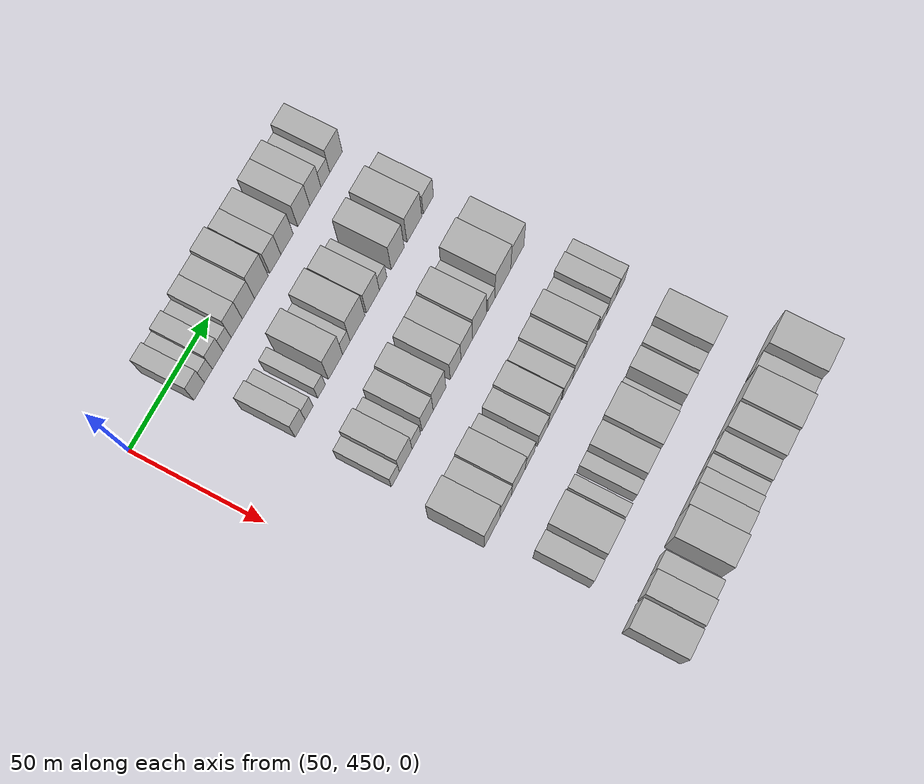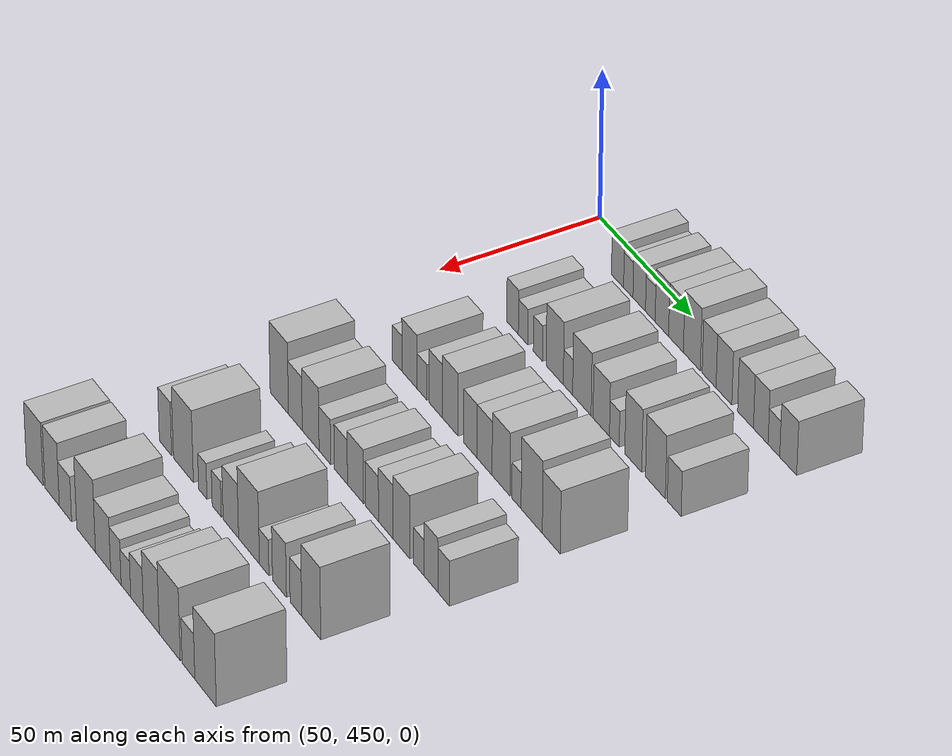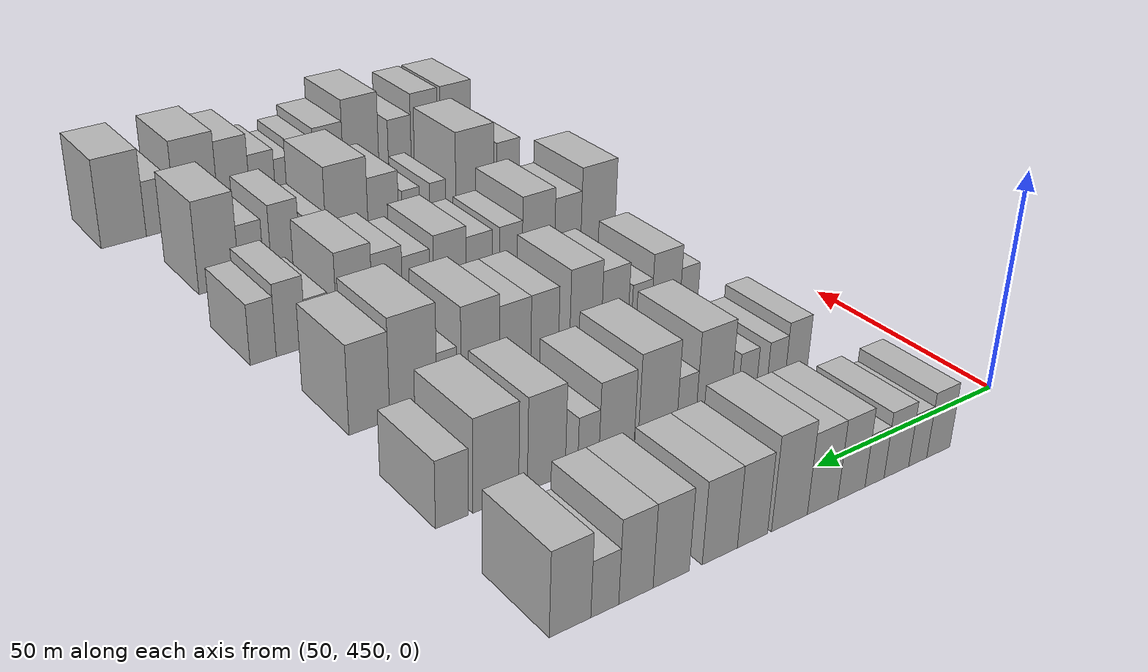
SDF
<sdf version="1.6">
 <world name="default">
  <model name="building_119">
   <static>1</static>
   <pose>50.0000 477.0918 0 0.000000 0.000000 0.000000</pose>
   <link name="link">
    <pose>0 0 7.50 0 0 0</pose>
    <collision name="collision"><geometry><box><size>20.0000 6.6706 15.0000</size></box></geometry></collision>
    <visual name="visual">
     <cast_shadows>0</cast_shadows>
     <geometry><box><size>20.0000 6.6706 15.0000</size></box></geometry>
     <material>
      <script>
       <uri>model://HANNAS_wall/materials/scripts</uri>
       <uri>model://HANNAS_wall/materials/textures</uri>
       <name>vrc/HANNAS_wall</name>
      </script>
     </material>
    </visual>
   </link>
  </model>
  <model name="building_120">
   <static>1</static>
   <pose>50.0000 482.9827 0 0.000000 0.000000 0.000000</pose>
   <link name="link">
    <pose>0 0 6.00 0 0 0</pose>
    <collision name="collision"><geometry><box><size>20.0000 5.1114 12.0000</size></box></geometry></collision>
    <visual name="visual">
     <cast_shadows>0</cast_shadows>
     <geometry><box><size>20.0000 5.1114 12.0000</size></box></geometry>
     <material>
      <script>
       <uri>model://HANNAS_wall/materials/scripts</uri>
       <uri>model://HANNAS_wall/materials/textures</uri>
       <name>vrc/HANNAS_wall</name>
      </script>
     </material>
    </visual>
   </link>
  </model>
  <model name="building_121">
   <static>1</static>
   <pose>50.0000 488.9538 0 0.000000 0.000000 0.000000</pose>
   <link name="link">
    <pose>0 0 7.50 0 0 0</pose>
    <collision name="collision"><geometry><box><size>20.0000 6.8308 15.0000</size></box></geometry></collision>
    <visual name="visual">
     <cast_shadows>0</cast_shadows>
     <geometry><box><size>20.0000 6.8308 15.0000</size></box></geometry>
     <material>
      <script>
       <uri>model://HANNAS_wall/materials/scripts</uri>
       <uri>model://HANNAS_wall/materials/textures</uri>
       <name>vrc/HANNAS_wall</name>
      </script>
     </material>
    </visual>
   </link>
  </model>
  <model name="building_122">
   <static>1</static>
   <pose>50.0000 494.9650 0 0.000000 0.000000 0.000000</pose>
   <link name="link">
    <pose>0 0 6.00 0 0 0</pose>
    <collision name="collision"><geometry><box><size>20.0000 5.1916 12.0000</size></box></geometry></collision>
    <visual name="visual">
     <cast_shadows>0</cast_shadows>
     <geometry><box><size>20.0000 5.1916 12.0000</size></box></geometry>
     <material>
      <script>
       <uri>model://HANNAS_wall/materials/scripts</uri>
       <uri>model://HANNAS_wall/materials/textures</uri>
       <name>vrc/HANNAS_wall</name>
      </script>
     </material>
    </visual>
   </link>
  </model>
  <model name="building_123">
   <static>1</static>
   <pose>50.0000 501.1820 0 0.000000 0.000000 0.000000</pose>
   <link name="link">
    <pose>0 0 9.00 0 0 0</pose>
    <collision name="collision"><geometry><box><size>20.0000 7.2425 18.0000</size></box></geometry></collision>
    <visual name="visual">
     <cast_shadows>0</cast_shadows>
     <geometry><box><size>20.0000 7.2425 18.0000</size></box></geometry>
     <material>
      <script>
       <uri>model://HANNAS_wall/materials/scripts</uri>
       <uri>model://HANNAS_wall/materials/textures</uri>
       <name>vrc/HANNAS_wall</name>
      </script>
     </material>
    </visual>
   </link>
  </model>
  <model name="building_124">
   <static>1</static>
   <pose>50.0000 508.7532 0 0.000000 0.000000 0.000000</pose>
   <link name="link">
    <pose>0 0 9.00 0 0 0</pose>
    <collision name="collision"><geometry><box><size>20.0000 7.9000 18.0000</size></box></geometry></collision>
    <visual name="visual">
     <cast_shadows>0</cast_shadows>
     <geometry><box><size>20.0000 7.9000 18.0000</size></box></geometry>
     <material>
      <script>
       <uri>model://HANNAS_wall/materials/scripts</uri>
       <uri>model://HANNAS_wall/materials/textures</uri>
       <name>vrc/HANNAS_wall</name>
      </script>
     </material>
    </visual>
   </link>
  </model>
  <model name="building_125">
   <static>1</static>
   <pose>50.0000 517.2124 0 0.000000 0.000000 0.000000</pose>
   <link name="link">
    <pose>0 0 10.50 0 0 0</pose>
    <collision name="collision"><geometry><box><size>20.0000 9.0184 21.0000</size></box></geometry></collision>
    <visual name="visual">
     <cast_shadows>0</cast_shadows>
     <geometry><box><size>20.0000 9.0184 21.0000</size></box></geometry>
     <material>
      <script>
       <uri>model://HANNAS_wall/materials/scripts</uri>
       <uri>model://HANNAS_wall/materials/textures</uri>
       <name>vrc/HANNAS_wall</name>
      </script>
     </material>
    </visual>
   </link>
  </model>
  <model name="building_126">
   <static>1</static>
   <pose>50.0000 526.3912 0 0.000000 0.000000 0.000000</pose>
   <link name="link">
    <pose>0 0 9.00 0 0 0</pose>
    <collision name="collision"><geometry><box><size>20.0000 7.3392 18.0000</size></box></geometry></collision>
    <visual name="visual">
     <cast_shadows>0</cast_shadows>
     <geometry><box><size>20.0000 7.3392 18.0000</size></box></geometry>
     <material>
      <script>
       <uri>model://HANNAS_wall/materials/scripts</uri>
       <uri>model://HANNAS_wall/materials/textures</uri>
       <name>vrc/HANNAS_wall</name>
      </script>
     </material>
    </visual>
   </link>
  </model>
  <model name="building_127">
   <static>1</static>
   <pose>50.0000 534.2144 0 0.000000 0.000000 0.000000</pose>
   <link name="link">
    <pose>0 0 9.00 0 0 0</pose>
    <collision name="collision"><geometry><box><size>20.0000 8.3072 18.0000</size></box></geometry></collision>
    <visual name="visual">
     <cast_shadows>0</cast_shadows>
     <geometry><box><size>20.0000 8.3072 18.0000</size></box></geometry>
     <material>
      <script>
       <uri>model://HANNAS_wall/materials/scripts</uri>
       <uri>model://HANNAS_wall/materials/textures</uri>
       <name>vrc/HANNAS_wall</name>
      </script>
     </material>
    </visual>
   </link>
  </model>
  <model name="building_128">
   <static>1</static>
   <pose>50.0000 545.4854 0 0.000000 0.000000 0.000000</pose>
   <link name="link">
    <pose>0 0 9.00 0 0 0</pose>
    <collision name="collision"><geometry><box><size>20.0000 8.2349 18.0000</size></box></geometry></collision>
    <visual name="visual">
     <cast_shadows>0</cast_shadows>
     <geometry><box><size>20.0000 8.2349 18.0000</size></box></geometry>
     <material>
      <script>
       <uri>model://HANNAS_wall/materials/scripts</uri>
       <uri>model://HANNAS_wall/materials/textures</uri>
       <name>vrc/HANNAS_wall</name>
      </script>
     </material>
    </visual>
   </link>
  </model>
  <model name="building_129">
   <static>1</static>
   <pose>50.0000 553.3881 0 0.000000 0.000000 0.000000</pose>
   <link name="link">
    <pose>0 0 9.00 0 0 0</pose>
    <collision name="collision"><geometry><box><size>20.0000 7.5705 18.0000</size></box></geometry></collision>
    <visual name="visual">
     <cast_shadows>0</cast_shadows>
     <geometry><box><size>20.0000 7.5705 18.0000</size></box></geometry>
     <material>
      <script>
       <uri>model://HANNAS_wall/materials/scripts</uri>
       <uri>model://HANNAS_wall/materials/textures</uri>
       <name>vrc/HANNAS_wall</name>
      </script>
     </material>
    </visual>
   </link>
  </model>
  <model name="building_130">
   <static>1</static>
   <pose>50.0000 560.1666 0 0.000000 0.000000 0.000000</pose>
   <link name="link">
    <pose>0 0 6.00 0 0 0</pose>
    <collision name="collision"><geometry><box><size>20.0000 5.9866 12.0000</size></box></geometry></collision>
    <visual name="visual">
     <cast_shadows>0</cast_shadows>
     <geometry><box><size>20.0000 5.9866 12.0000</size></box></geometry>
     <material>
      <script>
       <uri>model://HANNAS_wall/materials/scripts</uri>
       <uri>model://HANNAS_wall/materials/textures</uri>
       <name>vrc/HANNAS_wall</name>
      </script>
     </material>
    </visual>
   </link>
  </model>
  <model name="building_131">
   <static>1</static>
   <pose>50.0000 567.5049 0 0.000000 0.000000 0.000000</pose>
   <link name="link">
    <pose>0 0 9.00 0 0 0</pose>
    <collision name="collision"><geometry><box><size>20.0000 8.6899 18.0000</size></box></geometry></collision>
    <visual name="visual">
     <cast_shadows>0</cast_shadows>
     <geometry><box><size>20.0000 8.6899 18.0000</size></box></geometry>
     <material>
      <script>
       <uri>model://HANNAS_wall/materials/scripts</uri>
       <uri>model://HANNAS_wall/materials/textures</uri>
       <name>vrc/HANNAS_wall</name>
      </script>
     </material>
    </visual>
   </link>
  </model>
  <model name="building_246">
   <static>1</static>
   <pose>85.0000 481.6206 0 0.000000 0.000000 0.000000</pose>
   <link name="link">
    <pose>0 0 7.50 0 0 0</pose>
    <collision name="collision"><geometry><box><size>20.0000 6.4256 15.0000</size></box></geometry></collision>
    <visual name="visual">
     <cast_shadows>0</cast_shadows>
     <geometry><box><size>20.0000 6.4256 15.0000</size></box></geometry>
     <material>
      <script>
       <uri>model://HANNAS_wall/materials/scripts</uri>
       <uri>model://HANNAS_wall/materials/textures</uri>
       <name>vrc/HANNAS_wall</name>
      </script>
     </material>
    </visual>
   </link>
  </model>
  <model name="building_247">
   <static>1</static>
   <pose>85.0000 487.4382 0 0.000000 0.000000 0.000000</pose>
   <link name="link">
    <pose>0 0 6.00 0 0 0</pose>
    <collision name="collision"><geometry><box><size>20.0000 5.2096 12.0000</size></box></geometry></collision>
    <visual name="visual">
     <cast_shadows>0</cast_shadows>
     <geometry><box><size>20.0000 5.2096 12.0000</size></box></geometry>
     <material>
      <script>
       <uri>model://HANNAS_wall/materials/scripts</uri>
       <uri>model://HANNAS_wall/materials/textures</uri>
       <name>vrc/HANNAS_wall</name>
      </script>
     </material>
    </visual>
   </link>
  </model>
  <model name="building_248">
   <static>1</static>
   <pose>85.0000 495.5794 0 0.000000 0.000000 0.000000</pose>
   <link name="link">
    <pose>0 0 6.00 0 0 0</pose>
    <collision name="collision"><geometry><box><size>20.0000 5.0729 12.0000</size></box></geometry></collision>
    <visual name="visual">
     <cast_shadows>0</cast_shadows>
     <geometry><box><size>20.0000 5.0729 12.0000</size></box></geometry>
     <material>
      <script>
       <uri>model://HANNAS_wall/materials/scripts</uri>
       <uri>model://HANNAS_wall/materials/textures</uri>
       <name>vrc/HANNAS_wall</name>
      </script>
     </material>
    </visual>
   </link>
  </model>
  <model name="building_249">
   <static>1</static>
   <pose>85.0000 504.8098 0 0.000000 0.000000 0.000000</pose>
   <link name="link">
    <pose>0 0 10.50 0 0 0</pose>
    <collision name="collision"><geometry><box><size>20.0000 9.3879 21.0000</size></box></geometry></collision>
    <visual name="visual">
     <cast_shadows>0</cast_shadows>
     <geometry><box><size>20.0000 9.3879 21.0000</size></box></geometry>
     <material>
      <script>
       <uri>model://HANNAS_wall/materials/scripts</uri>
       <uri>model://HANNAS_wall/materials/textures</uri>
       <name>vrc/HANNAS_wall</name>
      </script>
     </material>
    </visual>
   </link>
  </model>
  <model name="building_250">
   <static>1</static>
   <pose>85.0000 512.0271 0 0.000000 0.000000 0.000000</pose>
   <link name="link">
    <pose>0 0 6.00 0 0 0</pose>
    <collision name="collision"><geometry><box><size>20.0000 5.0467 12.0000</size></box></geometry></collision>
    <visual name="visual">
     <cast_shadows>0</cast_shadows>
     <geometry><box><size>20.0000 5.0467 12.0000</size></box></geometry>
     <material>
      <script>
       <uri>model://HANNAS_wall/materials/scripts</uri>
       <uri>model://HANNAS_wall/materials/textures</uri>
       <name>vrc/HANNAS_wall</name>
      </script>
     </material>
    </visual>
   </link>
  </model>
  <model name="building_251">
   <static>1</static>
   <pose>85.0000 519.5351 0 0.000000 0.000000 0.000000</pose>
   <link name="link">
    <pose>0 0 10.50 0 0 0</pose>
    <collision name="collision"><geometry><box><size>20.0000 9.9693 21.0000</size></box></geometry></collision>
    <visual name="visual">
     <cast_shadows>0</cast_shadows>
     <geometry><box><size>20.0000 9.9693 21.0000</size></box></geometry>
     <material>
      <script>
       <uri>model://HANNAS_wall/materials/scripts</uri>
       <uri>model://HANNAS_wall/materials/textures</uri>
       <name>vrc/HANNAS_wall</name>
      </script>
     </material>
    </visual>
   </link>
  </model>
  <model name="building_252">
   <static>1</static>
   <pose>85.0000 529.9275 0 0.000000 0.000000 0.000000</pose>
   <link name="link">
    <pose>0 0 9.00 0 0 0</pose>
    <collision name="collision"><geometry><box><size>20.0000 8.8155 18.0000</size></box></geometry></collision>
    <visual name="visual">
     <cast_shadows>0</cast_shadows>
     <geometry><box><size>20.0000 8.8155 18.0000</size></box></geometry>
     <material>
      <script>
       <uri>model://HANNAS_wall/materials/scripts</uri>
       <uri>model://HANNAS_wall/materials/textures</uri>
       <name>vrc/HANNAS_wall</name>
      </script>
     </material>
    </visual>
   </link>
  </model>
  <model name="building_253">
   <static>1</static>
   <pose>85.0000 536.9122 0 0.000000 0.000000 0.000000</pose>
   <link name="link">
    <pose>0 0 6.00 0 0 0</pose>
    <collision name="collision"><geometry><box><size>20.0000 5.1539 12.0000</size></box></geometry></collision>
    <visual name="visual">
     <cast_shadows>0</cast_shadows>
     <geometry><box><size>20.0000 5.1539 12.0000</size></box></geometry>
     <material>
      <script>
       <uri>model://HANNAS_wall/materials/scripts</uri>
       <uri>model://HANNAS_wall/materials/textures</uri>
       <name>vrc/HANNAS_wall</name>
      </script>
     </material>
    </visual>
   </link>
  </model>
  <model name="building_254">
   <static>1</static>
   <pose>85.0000 546.9559 0 0.000000 0.000000 0.000000</pose>
   <link name="link">
    <pose>0 0 10.50 0 0 0</pose>
    <collision name="collision"><geometry><box><size>20.0000 8.9335 21.0000</size></box></geometry></collision>
    <visual name="visual">
     <cast_shadows>0</cast_shadows>
     <geometry><box><size>20.0000 8.9335 21.0000</size></box></geometry>
     <material>
      <script>
       <uri>model://HANNAS_wall/materials/scripts</uri>
       <uri>model://HANNAS_wall/materials/textures</uri>
       <name>vrc/HANNAS_wall</name>
      </script>
     </material>
    </visual>
   </link>
  </model>
  <model name="building_255">
   <static>1</static>
   <pose>85.0000 558.6163 0 0.000000 0.000000 0.000000</pose>
   <link name="link">
    <pose>0 0 10.50 0 0 0</pose>
    <collision name="collision"><geometry><box><size>20.0000 10.3873 21.0000</size></box></geometry></collision>
    <visual name="visual">
     <cast_shadows>0</cast_shadows>
     <geometry><box><size>20.0000 10.3873 21.0000</size></box></geometry>
     <material>
      <script>
       <uri>model://HANNAS_wall/materials/scripts</uri>
       <uri>model://HANNAS_wall/materials/textures</uri>
       <name>vrc/HANNAS_wall</name>
      </script>
     </material>
    </visual>
   </link>
  </model>
  <model name="building_256">
   <static>1</static>
   <pose>85.0000 568.4109 0 0.000000 0.000000 0.000000</pose>
   <link name="link">
    <pose>0 0 7.50 0 0 0</pose>
    <collision name="collision"><geometry><box><size>20.0000 7.2018 15.0000</size></box></geometry></collision>
    <visual name="visual">
     <cast_shadows>0</cast_shadows>
     <geometry><box><size>20.0000 7.2018 15.0000</size></box></geometry>
     <material>
      <script>
       <uri>model://HANNAS_wall/materials/scripts</uri>
       <uri>model://HANNAS_wall/materials/textures</uri>
       <name>vrc/HANNAS_wall</name>
      </script>
     </material>
    </visual>
   </link>
  </model>
  <model name="building_369">
   <static>1</static>
   <pose>120.0000 481.2871 0 0.000000 0.000000 0.000000</pose>
   <link name="link">
    <pose>0 0 6.00 0 0 0</pose>
    <collision name="collision"><geometry><box><size>20.0000 5.3602 12.0000</size></box></geometry></collision>
    <visual name="visual">
     <cast_shadows>0</cast_shadows>
     <geometry><box><size>20.0000 5.3602 12.0000</size></box></geometry>
     <material>
      <script>
       <uri>model://HANNAS_wall/materials/scripts</uri>
       <uri>model://HANNAS_wall/materials/textures</uri>
       <name>vrc/HANNAS_wall</name>
      </script>
     </material>
    </visual>
   </link>
  </model>
  <model name="building_370">
   <static>1</static>
   <pose>120.0000 488.1576 0 0.000000 0.000000 0.000000</pose>
   <link name="link">
    <pose>0 0 9.00 0 0 0</pose>
    <collision name="collision"><geometry><box><size>20.0000 8.3807 18.0000</size></box></geometry></collision>
    <visual name="visual">
     <cast_shadows>0</cast_shadows>
     <geometry><box><size>20.0000 8.3807 18.0000</size></box></geometry>
     <material>
      <script>
       <uri>model://HANNAS_wall/materials/scripts</uri>
       <uri>model://HANNAS_wall/materials/textures</uri>
       <name>vrc/HANNAS_wall</name>
      </script>
     </material>
    </visual>
   </link>
  </model>
  <model name="building_371">
   <static>1</static>
   <pose>120.0000 495.2003 0 0.000000 0.000000 0.000000</pose>
   <link name="link">
    <pose>0 0 6.00 0 0 0</pose>
    <collision name="collision"><geometry><box><size>20.0000 5.7048 12.0000</size></box></geometry></collision>
    <visual name="visual">
     <cast_shadows>0</cast_shadows>
     <geometry><box><size>20.0000 5.7048 12.0000</size></box></geometry>
     <material>
      <script>
       <uri>model://HANNAS_wall/materials/scripts</uri>
       <uri>model://HANNAS_wall/materials/textures</uri>
       <name>vrc/HANNAS_wall</name>
      </script>
     </material>
    </visual>
   </link>
  </model>
  <model name="building_372">
   <static>1</static>
   <pose>120.0000 502.8344 0 0.000000 0.000000 0.000000</pose>
   <link name="link">
    <pose>0 0 9.00 0 0 0</pose>
    <collision name="collision"><geometry><box><size>20.0000 7.5634 18.0000</size></box></geometry></collision>
    <visual name="visual">
     <cast_shadows>0</cast_shadows>
     <geometry><box><size>20.0000 7.5634 18.0000</size></box></geometry>
     <material>
      <script>
       <uri>model://HANNAS_wall/materials/scripts</uri>
       <uri>model://HANNAS_wall/materials/textures</uri>
       <name>vrc/HANNAS_wall</name>
      </script>
     </material>
    </visual>
   </link>
  </model>
  <model name="building_373">
   <static>1</static>
   <pose>120.0000 510.9601 0 0.000000 0.000000 0.000000</pose>
   <link name="link">
    <pose>0 0 10.50 0 0 0</pose>
    <collision name="collision"><geometry><box><size>20.0000 8.6878 21.0000</size></box></geometry></collision>
    <visual name="visual">
     <cast_shadows>0</cast_shadows>
     <geometry><box><size>20.0000 8.6878 21.0000</size></box></geometry>
     <material>
      <script>
       <uri>model://HANNAS_wall/materials/scripts</uri>
       <uri>model://HANNAS_wall/materials/textures</uri>
       <name>vrc/HANNAS_wall</name>
      </script>
     </material>
    </visual>
   </link>
  </model>
  <model name="building_374">
   <static>1</static>
   <pose>120.0000 521.9841 0 0.000000 0.000000 0.000000</pose>
   <link name="link">
    <pose>0 0 9.00 0 0 0</pose>
    <collision name="collision"><geometry><box><size>20.0000 7.3604 18.0000</size></box></geometry></collision>
    <visual name="visual">
     <cast_shadows>0</cast_shadows>
     <geometry><box><size>20.0000 7.3604 18.0000</size></box></geometry>
     <material>
      <script>
       <uri>model://HANNAS_wall/materials/scripts</uri>
       <uri>model://HANNAS_wall/materials/textures</uri>
       <name>vrc/HANNAS_wall</name>
      </script>
     </material>
    </visual>
   </link>
  </model>
  <model name="building_375">
   <static>1</static>
   <pose>120.0000 529.7466 0 0.000000 0.000000 0.000000</pose>
   <link name="link">
    <pose>0 0 9.00 0 0 0</pose>
    <collision name="collision"><geometry><box><size>20.0000 8.1645 18.0000</size></box></geometry></collision>
    <visual name="visual">
     <cast_shadows>0</cast_shadows>
     <geometry><box><size>20.0000 8.1645 18.0000</size></box></geometry>
     <material>
      <script>
       <uri>model://HANNAS_wall/materials/scripts</uri>
       <uri>model://HANNAS_wall/materials/textures</uri>
       <name>vrc/HANNAS_wall</name>
      </script>
     </material>
    </visual>
   </link>
  </model>
  <model name="building_376">
   <static>1</static>
   <pose>120.0000 538.6547 0 0.000000 0.000000 0.000000</pose>
   <link name="link">
    <pose>0 0 10.50 0 0 0</pose>
    <collision name="collision"><geometry><box><size>20.0000 9.6517 21.0000</size></box></geometry></collision>
    <visual name="visual">
     <cast_shadows>0</cast_shadows>
     <geometry><box><size>20.0000 9.6517 21.0000</size></box></geometry>
     <material>
      <script>
       <uri>model://HANNAS_wall/materials/scripts</uri>
       <uri>model://HANNAS_wall/materials/textures</uri>
       <name>vrc/HANNAS_wall</name>
      </script>
     </material>
    </visual>
   </link>
  </model>
  <model name="building_377">
   <static>1</static>
   <pose>120.0000 546.9746 0 0.000000 0.000000 0.000000</pose>
   <link name="link">
    <pose>0 0 6.00 0 0 0</pose>
    <collision name="collision"><geometry><box><size>20.0000 4.9881 12.0000</size></box></geometry></collision>
    <visual name="visual">
     <cast_shadows>0</cast_shadows>
     <geometry><box><size>20.0000 4.9881 12.0000</size></box></geometry>
     <material>
      <script>
       <uri>model://HANNAS_wall/materials/scripts</uri>
       <uri>model://HANNAS_wall/materials/textures</uri>
       <name>vrc/HANNAS_wall</name>
      </script>
     </material>
    </visual>
   </link>
  </model>
  <model name="building_378">
   <static>1</static>
   <pose>120.0000 555.1333 0 0.000000 0.000000 0.000000</pose>
   <link name="link">
    <pose>0 0 12.00 0 0 0</pose>
    <collision name="collision"><geometry><box><size>20.0000 11.3293 24.0000</size></box></geometry></collision>
    <visual name="visual">
     <cast_shadows>0</cast_shadows>
     <geometry><box><size>20.0000 11.3293 24.0000</size></box></geometry>
     <material>
      <script>
       <uri>model://HANNAS_wall/materials/scripts</uri>
       <uri>model://HANNAS_wall/materials/textures</uri>
       <name>vrc/HANNAS_wall</name>
      </script>
     </material>
    </visual>
   </link>
  </model>
  <model name="building_379">
   <static>1</static>
   <pose>120.0000 565.5545 0 0.000000 0.000000 0.000000</pose>
   <link name="link">
    <pose>0 0 10.50 0 0 0</pose>
    <collision name="collision"><geometry><box><size>20.0000 9.5131 21.0000</size></box></geometry></collision>
    <visual name="visual">
     <cast_shadows>0</cast_shadows>
     <geometry><box><size>20.0000 9.5131 21.0000</size></box></geometry>
     <material>
      <script>
       <uri>model://HANNAS_wall/materials/scripts</uri>
       <uri>model://HANNAS_wall/materials/textures</uri>
       <name>vrc/HANNAS_wall</name>
      </script>
     </material>
    </visual>
   </link>
  </model>
  <model name="building_493">
   <static>1</static>
   <pose>155.0000 480.4777 0 0.000000 0.000000 0.000000</pose>
   <link name="link">
    <pose>0 0 12.00 0 0 0</pose>
    <collision name="collision"><geometry><box><size>20.0000 10.5417 24.0000</size></box></geometry></collision>
    <visual name="visual">
     <cast_shadows>0</cast_shadows>
     <geometry><box><size>20.0000 10.5417 24.0000</size></box></geometry>
     <material>
      <script>
       <uri>model://HANNAS_wall/materials/scripts</uri>
       <uri>model://HANNAS_wall/materials/textures</uri>
       <name>vrc/HANNAS_wall</name>
      </script>
     </material>
    </visual>
   </link>
  </model>
  <model name="building_494">
   <static>1</static>
   <pose>155.0000 489.7058 0 0.000000 0.000000 0.000000</pose>
   <link name="link">
    <pose>0 0 9.00 0 0 0</pose>
    <collision name="collision"><geometry><box><size>20.0000 7.9146 18.0000</size></box></geometry></collision>
    <visual name="visual">
     <cast_shadows>0</cast_shadows>
     <geometry><box><size>20.0000 7.9146 18.0000</size></box></geometry>
     <material>
      <script>
       <uri>model://HANNAS_wall/materials/scripts</uri>
       <uri>model://HANNAS_wall/materials/textures</uri>
       <name>vrc/HANNAS_wall</name>
      </script>
     </material>
    </visual>
   </link>
  </model>
  <model name="building_495">
   <static>1</static>
   <pose>155.0000 498.4203 0 0.000000 0.000000 0.000000</pose>
   <link name="link">
    <pose>0 0 10.50 0 0 0</pose>
    <collision name="collision"><geometry><box><size>20.0000 9.5144 21.0000</size></box></geometry></collision>
    <visual name="visual">
     <cast_shadows>0</cast_shadows>
     <geometry><box><size>20.0000 9.5144 21.0000</size></box></geometry>
     <material>
      <script>
       <uri>model://HANNAS_wall/materials/scripts</uri>
       <uri>model://HANNAS_wall/materials/textures</uri>
       <name>vrc/HANNAS_wall</name>
      </script>
     </material>
    </visual>
   </link>
  </model>
  <model name="building_496">
   <static>1</static>
   <pose>155.0000 506.4760 0 0.000000 0.000000 0.000000</pose>
   <link name="link">
    <pose>0 0 7.50 0 0 0</pose>
    <collision name="collision"><geometry><box><size>20.0000 6.5970 15.0000</size></box></geometry></collision>
    <visual name="visual">
     <cast_shadows>0</cast_shadows>
     <geometry><box><size>20.0000 6.5970 15.0000</size></box></geometry>
     <material>
      <script>
       <uri>model://HANNAS_wall/materials/scripts</uri>
       <uri>model://HANNAS_wall/materials/textures</uri>
       <name>vrc/HANNAS_wall</name>
      </script>
     </material>
    </visual>
   </link>
  </model>
  <model name="building_497">
   <static>1</static>
   <pose>155.0000 515.4510 0 0.000000 0.000000 0.000000</pose>
   <link name="link">
    <pose>0 0 7.50 0 0 0</pose>
    <collision name="collision"><geometry><box><size>20.0000 7.3530 15.0000</size></box></geometry></collision>
    <visual name="visual">
     <cast_shadows>0</cast_shadows>
     <geometry><box><size>20.0000 7.3530 15.0000</size></box></geometry>
     <material>
      <script>
       <uri>model://HANNAS_wall/materials/scripts</uri>
       <uri>model://HANNAS_wall/materials/textures</uri>
       <name>vrc/HANNAS_wall</name>
      </script>
     </material>
    </visual>
   </link>
  </model>
  <model name="building_498">
   <static>1</static>
   <pose>155.0000 523.5998 0 0.000000 0.000000 0.000000</pose>
   <link name="link">
    <pose>0 0 9.00 0 0 0</pose>
    <collision name="collision"><geometry><box><size>20.0000 8.9444 18.0000</size></box></geometry></collision>
    <visual name="visual">
     <cast_shadows>0</cast_shadows>
     <geometry><box><size>20.0000 8.9444 18.0000</size></box></geometry>
     <material>
      <script>
       <uri>model://HANNAS_wall/materials/scripts</uri>
       <uri>model://HANNAS_wall/materials/textures</uri>
       <name>vrc/HANNAS_wall</name>
      </script>
     </material>
    </visual>
   </link>
  </model>
  <model name="building_499">
   <static>1</static>
   <pose>155.0000 532.7424 0 0.000000 0.000000 0.000000</pose>
   <link name="link">
    <pose>0 0 7.50 0 0 0</pose>
    <collision name="collision"><geometry><box><size>20.0000 7.3409 15.0000</size></box></geometry></collision>
    <visual name="visual">
     <cast_shadows>0</cast_shadows>
     <geometry><box><size>20.0000 7.3409 15.0000</size></box></geometry>
     <material>
      <script>
       <uri>model://HANNAS_wall/materials/scripts</uri>
       <uri>model://HANNAS_wall/materials/textures</uri>
       <name>vrc/HANNAS_wall</name>
      </script>
     </material>
    </visual>
   </link>
  </model>
  <model name="building_500">
   <static>1</static>
   <pose>155.0000 540.3718 0 0.000000 0.000000 0.000000</pose>
   <link name="link">
    <pose>0 0 9.00 0 0 0</pose>
    <collision name="collision"><geometry><box><size>20.0000 7.9178 18.0000</size></box></geometry></collision>
    <visual name="visual">
     <cast_shadows>0</cast_shadows>
     <geometry><box><size>20.0000 7.9178 18.0000</size></box></geometry>
     <material>
      <script>
       <uri>model://HANNAS_wall/materials/scripts</uri>
       <uri>model://HANNAS_wall/materials/textures</uri>
       <name>vrc/HANNAS_wall</name>
      </script>
     </material>
    </visual>
   </link>
  </model>
  <model name="building_501">
   <static>1</static>
   <pose>155.0000 548.9046 0 0.000000 0.000000 0.000000</pose>
   <link name="link">
    <pose>0 0 10.50 0 0 0</pose>
    <collision name="collision"><geometry><box><size>20.0000 9.1477 21.0000</size></box></geometry></collision>
    <visual name="visual">
     <cast_shadows>0</cast_shadows>
     <geometry><box><size>20.0000 9.1477 21.0000</size></box></geometry>
     <material>
      <script>
       <uri>model://HANNAS_wall/materials/scripts</uri>
       <uri>model://HANNAS_wall/materials/textures</uri>
       <name>vrc/HANNAS_wall</name>
      </script>
     </material>
    </visual>
   </link>
  </model>
  <model name="building_502">
   <static>1</static>
   <pose>155.0000 558.4181 0 0.000000 0.000000 0.000000</pose>
   <link name="link">
    <pose>0 0 6.00 0 0 0</pose>
    <collision name="collision"><geometry><box><size>20.0000 5.8793 12.0000</size></box></geometry></collision>
    <visual name="visual">
     <cast_shadows>0</cast_shadows>
     <geometry><box><size>20.0000 5.8793 12.0000</size></box></geometry>
     <material>
      <script>
       <uri>model://HANNAS_wall/materials/scripts</uri>
       <uri>model://HANNAS_wall/materials/textures</uri>
       <name>vrc/HANNAS_wall</name>
      </script>
     </material>
    </visual>
   </link>
  </model>
  <model name="building_503">
   <static>1</static>
   <pose>155.0000 565.0033 0 0.000000 0.000000 0.000000</pose>
   <link name="link">
    <pose>0 0 9.00 0 0 0</pose>
    <collision name="collision"><geometry><box><size>20.0000 7.2912 18.0000</size></box></geometry></collision>
    <visual name="visual">
     <cast_shadows>0</cast_shadows>
     <geometry><box><size>20.0000 7.2912 18.0000</size></box></geometry>
     <material>
      <script>
       <uri>model://HANNAS_wall/materials/scripts</uri>
       <uri>model://HANNAS_wall/materials/textures</uri>
       <name>vrc/HANNAS_wall</name>
      </script>
     </material>
    </visual>
   </link>
  </model>
  <model name="building_504">
   <static>1</static>
   <pose>155.0000 571.7932 0 0.000000 0.000000 0.000000</pose>
   <link name="link">
    <pose>0 0 7.50 0 0 0</pose>
    <collision name="collision"><geometry><box><size>20.0000 6.2884 15.0000</size></box></geometry></collision>
    <visual name="visual">
     <cast_shadows>0</cast_shadows>
     <geometry><box><size>20.0000 6.2884 15.0000</size></box></geometry>
     <material>
      <script>
       <uri>model://HANNAS_wall/materials/scripts</uri>
       <uri>model://HANNAS_wall/materials/textures</uri>
       <name>vrc/HANNAS_wall</name>
      </script>
     </material>
    </visual>
   </link>
  </model>
  <model name="building_622">
   <static>1</static>
   <pose>190.0000 483.0063 0 0.000000 0.000000 0.000000</pose>
   <link name="link">
    <pose>0 0 9.00 0 0 0</pose>
    <collision name="collision"><geometry><box><size>20.0000 7.2192 18.0000</size></box></geometry></collision>
    <visual name="visual">
     <cast_shadows>0</cast_shadows>
     <geometry><box><size>20.0000 7.2192 18.0000</size></box></geometry>
     <material>
      <script>
       <uri>model://HANNAS_wall/materials/scripts</uri>
       <uri>model://HANNAS_wall/materials/textures</uri>
       <name>vrc/HANNAS_wall</name>
      </script>
     </material>
    </visual>
   </link>
  </model>
  <model name="building_623">
   <static>1</static>
   <pose>190.0000 493.4382 0 0.000000 0.000000 0.000000</pose>
   <link name="link">
    <pose>0 0 12.00 0 0 0</pose>
    <collision name="collision"><geometry><box><size>20.0000 11.6445 24.0000</size></box></geometry></collision>
    <visual name="visual">
     <cast_shadows>0</cast_shadows>
     <geometry><box><size>20.0000 11.6445 24.0000</size></box></geometry>
     <material>
      <script>
       <uri>model://HANNAS_wall/materials/scripts</uri>
       <uri>model://HANNAS_wall/materials/textures</uri>
       <name>vrc/HANNAS_wall</name>
      </script>
     </material>
    </visual>
   </link>
  </model>
  <model name="building_624">
   <static>1</static>
   <pose>190.0000 504.6678 0 0.000000 0.000000 0.000000</pose>
   <link name="link">
    <pose>0 0 6.00 0 0 0</pose>
    <collision name="collision"><geometry><box><size>20.0000 4.8148 12.0000</size></box></geometry></collision>
    <visual name="visual">
     <cast_shadows>0</cast_shadows>
     <geometry><box><size>20.0000 4.8148 12.0000</size></box></geometry>
     <material>
      <script>
       <uri>model://HANNAS_wall/materials/scripts</uri>
       <uri>model://HANNAS_wall/materials/textures</uri>
       <name>vrc/HANNAS_wall</name>
      </script>
     </material>
    </visual>
   </link>
  </model>
  <model name="building_625">
   <static>1</static>
   <pose>190.0000 512.6983 0 0.000000 0.000000 0.000000</pose>
   <link name="link">
    <pose>0 0 6.00 0 0 0</pose>
    <collision name="collision"><geometry><box><size>20.0000 5.2462 12.0000</size></box></geometry></collision>
    <visual name="visual">
     <cast_shadows>0</cast_shadows>
     <geometry><box><size>20.0000 5.2462 12.0000</size></box></geometry>
     <material>
      <script>
       <uri>model://HANNAS_wall/materials/scripts</uri>
       <uri>model://HANNAS_wall/materials/textures</uri>
       <name>vrc/HANNAS_wall</name>
      </script>
     </material>
    </visual>
   </link>
  </model>
  <model name="building_626">
   <static>1</static>
   <pose>190.0000 520.7171 0 0.000000 0.000000 0.000000</pose>
   <link name="link">
    <pose>0 0 9.00 0 0 0</pose>
    <collision name="collision"><geometry><box><size>20.0000 8.7913 18.0000</size></box></geometry></collision>
    <visual name="visual">
     <cast_shadows>0</cast_shadows>
     <geometry><box><size>20.0000 8.7913 18.0000</size></box></geometry>
     <material>
      <script>
       <uri>model://HANNAS_wall/materials/scripts</uri>
       <uri>model://HANNAS_wall/materials/textures</uri>
       <name>vrc/HANNAS_wall</name>
      </script>
     </material>
    </visual>
   </link>
  </model>
  <model name="building_627">
   <static>1</static>
   <pose>190.0000 531.0023 0 0.000000 0.000000 0.000000</pose>
   <link name="link">
    <pose>0 0 12.00 0 0 0</pose>
    <collision name="collision"><geometry><box><size>20.0000 11.7791 24.0000</size></box></geometry></collision>
    <visual name="visual">
     <cast_shadows>0</cast_shadows>
     <geometry><box><size>20.0000 11.7791 24.0000</size></box></geometry>
     <material>
      <script>
       <uri>model://HANNAS_wall/materials/scripts</uri>
       <uri>model://HANNAS_wall/materials/textures</uri>
       <name>vrc/HANNAS_wall</name>
      </script>
     </material>
    </visual>
   </link>
  </model>
  <model name="building_628">
   <static>1</static>
   <pose>190.0000 539.5532 0 0.000000 0.000000 0.000000</pose>
   <link name="link">
    <pose>0 0 6.00 0 0 0</pose>
    <collision name="collision"><geometry><box><size>20.0000 5.3229 12.0000</size></box></geometry></collision>
    <visual name="visual">
     <cast_shadows>0</cast_shadows>
     <geometry><box><size>20.0000 5.3229 12.0000</size></box></geometry>
     <material>
      <script>
       <uri>model://HANNAS_wall/materials/scripts</uri>
       <uri>model://HANNAS_wall/materials/textures</uri>
       <name>vrc/HANNAS_wall</name>
      </script>
     </material>
    </visual>
   </link>
  </model>
  <model name="building_629">
   <static>1</static>
   <pose>190.0000 548.1037 0 0.000000 0.000000 0.000000</pose>
   <link name="link">
    <pose>0 0 9.00 0 0 0</pose>
    <collision name="collision"><geometry><box><size>20.0000 7.7782 18.0000</size></box></geometry></collision>
    <visual name="visual">
     <cast_shadows>0</cast_shadows>
     <geometry><box><size>20.0000 7.7782 18.0000</size></box></geometry>
     <material>
      <script>
       <uri>model://HANNAS_wall/materials/scripts</uri>
       <uri>model://HANNAS_wall/materials/textures</uri>
       <name>vrc/HANNAS_wall</name>
      </script>
     </material>
    </visual>
   </link>
  </model>
  <model name="building_630">
   <static>1</static>
   <pose>190.0000 557.2369 0 0.000000 0.000000 0.000000</pose>
   <link name="link">
    <pose>0 0 7.50 0 0 0</pose>
    <collision name="collision"><geometry><box><size>20.0000 6.4881 15.0000</size></box></geometry></collision>
    <visual name="visual">
     <cast_shadows>0</cast_shadows>
     <geometry><box><size>20.0000 6.4881 15.0000</size></box></geometry>
     <material>
      <script>
       <uri>model://HANNAS_wall/materials/scripts</uri>
       <uri>model://HANNAS_wall/materials/textures</uri>
       <name>vrc/HANNAS_wall</name>
      </script>
     </material>
    </visual>
   </link>
  </model>
  <model name="building_631">
   <static>1</static>
   <pose>190.0000 565.6968 0 0.000000 0.000000 0.000000</pose>
   <link name="link">
    <pose>0 0 12.00 0 0 0</pose>
    <collision name="collision"><geometry><box><size>20.0000 10.4316 24.0000</size></box></geometry></collision>
    <visual name="visual">
     <cast_shadows>0</cast_shadows>
     <geometry><box><size>20.0000 10.4316 24.0000</size></box></geometry>
     <material>
      <script>
       <uri>model://HANNAS_wall/materials/scripts</uri>
       <uri>model://HANNAS_wall/materials/textures</uri>
       <name>vrc/HANNAS_wall</name>
      </script>
     </material>
    </visual>
   </link>
  </model>
  <model name="building_743">
   <static>1</static>
   <pose>225.0000 476.5886 0 0.000000 0.000000 0.000000</pose>
   <link name="link">
    <pose>0 0 10.50 0 0 0</pose>
    <collision name="collision"><geometry><box><size>20.0000 10.1199 21.0000</size></box></geometry></collision>
    <visual name="visual">
     <cast_shadows>0</cast_shadows>
     <geometry><box><size>20.0000 10.1199 21.0000</size></box></geometry>
     <material>
      <script>
       <uri>model://HANNAS_wall/materials/scripts</uri>
       <uri>model://HANNAS_wall/materials/textures</uri>
       <name>vrc/HANNAS_wall</name>
      </script>
     </material>
    </visual>
   </link>
  </model>
  <model name="building_744">
   <static>1</static>
   <pose>225.0000 486.9394 0 0.000000 0.000000 0.000000</pose>
   <link name="link">
    <pose>0 0 10.50 0 0 0</pose>
    <collision name="collision"><geometry><box><size>20.0000 8.5817 21.0000</size></box></geometry></collision>
    <visual name="visual">
     <cast_shadows>0</cast_shadows>
     <geometry><box><size>20.0000 8.5817 21.0000</size></box></geometry>
     <material>
      <script>
       <uri>model://HANNAS_wall/materials/scripts</uri>
       <uri>model://HANNAS_wall/materials/textures</uri>
       <name>vrc/HANNAS_wall</name>
      </script>
     </material>
    </visual>
   </link>
  </model>
  <model name="building_745">
   <static>1</static>
   <pose>225.0000 494.8713 0 0.000000 0.000000 0.000000</pose>
   <link name="link">
    <pose>0 0 7.50 0 0 0</pose>
    <collision name="collision"><geometry><box><size>20.0000 7.2821 15.0000</size></box></geometry></collision>
    <visual name="visual">
     <cast_shadows>0</cast_shadows>
     <geometry><box><size>20.0000 7.2821 15.0000</size></box></geometry>
     <material>
      <script>
       <uri>model://HANNAS_wall/materials/scripts</uri>
       <uri>model://HANNAS_wall/materials/textures</uri>
       <name>vrc/HANNAS_wall</name>
      </script>
     </material>
    </visual>
   </link>
  </model>
  <model name="building_746">
   <static>1</static>
   <pose>225.0000 507.0073 0 0.000000 0.000000 0.000000</pose>
   <link name="link">
    <pose>0 0 12.00 0 0 0</pose>
    <collision name="collision"><geometry><box><size>20.0000 10.9899 24.0000</size></box></geometry></collision>
    <visual name="visual">
     <cast_shadows>0</cast_shadows>
     <geometry><box><size>20.0000 10.9899 24.0000</size></box></geometry>
     <material>
      <script>
       <uri>model://HANNAS_wall/materials/scripts</uri>
       <uri>model://HANNAS_wall/materials/textures</uri>
       <name>vrc/HANNAS_wall</name>
      </script>
     </material>
    </visual>
   </link>
  </model>
  <model name="building_747">
   <static>1</static>
   <pose>225.0000 516.9260 0 0.000000 0.000000 0.000000</pose>
   <link name="link">
    <pose>0 0 9.00 0 0 0</pose>
    <collision name="collision"><geometry><box><size>20.0000 8.8473 18.0000</size></box></geometry></collision>
    <visual name="visual">
     <cast_shadows>0</cast_shadows>
     <geometry><box><size>20.0000 8.8473 18.0000</size></box></geometry>
     <material>
      <script>
       <uri>model://HANNAS_wall/materials/scripts</uri>
       <uri>model://HANNAS_wall/materials/textures</uri>
       <name>vrc/HANNAS_wall</name>
      </script>
     </material>
    </visual>
   </link>
  </model>
  <model name="building_748">
   <static>1</static>
   <pose>225.0000 524.3804 0 0.000000 0.000000 0.000000</pose>
   <link name="link">
    <pose>0 0 7.50 0 0 0</pose>
    <collision name="collision"><geometry><box><size>20.0000 6.0616 15.0000</size></box></geometry></collision>
    <visual name="visual">
     <cast_shadows>0</cast_shadows>
     <geometry><box><size>20.0000 6.0616 15.0000</size></box></geometry>
     <material>
      <script>
       <uri>model://HANNAS_wall/materials/scripts</uri>
       <uri>model://HANNAS_wall/materials/textures</uri>
       <name>vrc/HANNAS_wall</name>
      </script>
     </material>
    </visual>
   </link>
  </model>
  <model name="building_749">
   <static>1</static>
   <pose>225.0000 530.1834 0 0.000000 0.000000 0.000000</pose>
   <link name="link">
    <pose>0 0 6.00 0 0 0</pose>
    <collision name="collision"><geometry><box><size>20.0000 5.5443 12.0000</size></box></geometry></collision>
    <visual name="visual">
     <cast_shadows>0</cast_shadows>
     <geometry><box><size>20.0000 5.5443 12.0000</size></box></geometry>
     <material>
      <script>
       <uri>model://HANNAS_wall/materials/scripts</uri>
       <uri>model://HANNAS_wall/materials/textures</uri>
       <name>vrc/HANNAS_wall</name>
      </script>
     </material>
    </visual>
   </link>
  </model>
  <model name="building_750">
   <static>1</static>
   <pose>225.0000 536.6110 0 0.000000 0.000000 0.000000</pose>
   <link name="link">
    <pose>0 0 7.50 0 0 0</pose>
    <collision name="collision"><geometry><box><size>20.0000 7.3109 15.0000</size></box></geometry></collision>
    <visual name="visual">
     <cast_shadows>0</cast_shadows>
     <geometry><box><size>20.0000 7.3109 15.0000</size></box></geometry>
     <material>
      <script>
       <uri>model://HANNAS_wall/materials/scripts</uri>
       <uri>model://HANNAS_wall/materials/textures</uri>
       <name>vrc/HANNAS_wall</name>
      </script>
     </material>
    </visual>
   </link>
  </model>
  <model name="building_751">
   <static>1</static>
   <pose>225.0000 544.7774 0 0.000000 0.000000 0.000000</pose>
   <link name="link">
    <pose>0 0 10.50 0 0 0</pose>
    <collision name="collision"><geometry><box><size>20.0000 9.0219 21.0000</size></box></geometry></collision>
    <visual name="visual">
     <cast_shadows>0</cast_shadows>
     <geometry><box><size>20.0000 9.0219 21.0000</size></box></geometry>
     <material>
      <script>
       <uri>model://HANNAS_wall/materials/scripts</uri>
       <uri>model://HANNAS_wall/materials/textures</uri>
       <name>vrc/HANNAS_wall</name>
      </script>
     </material>
    </visual>
   </link>
  </model>
  <model name="building_752">
   <static>1</static>
   <pose>225.0000 555.2130 0 0.000000 0.000000 0.000000</pose>
   <link name="link">
    <pose>0 0 12.00 0 0 0</pose>
    <collision name="collision"><geometry><box><size>20.0000 11.8493 24.0000</size></box></geometry></collision>
    <visual name="visual">
     <cast_shadows>0</cast_shadows>
     <geometry><box><size>20.0000 11.8493 24.0000</size></box></geometry>
     <material>
      <script>
       <uri>model://HANNAS_wall/materials/scripts</uri>
       <uri>model://HANNAS_wall/materials/textures</uri>
       <name>vrc/HANNAS_wall</name>
      </script>
     </material>
    </visual>
   </link>
  </model>
  <model name="building_753">
   <static>1</static>
   <pose>225.0000 565.7028 0 0.000000 0.000000 0.000000</pose>
   <link name="link">
    <pose>0 0 7.50 0 0 0</pose>
    <collision name="collision"><geometry><box><size>20.0000 7.1303 15.0000</size></box></geometry></collision>
    <visual name="visual">
     <cast_shadows>0</cast_shadows>
     <geometry><box><size>20.0000 7.1303 15.0000</size></box></geometry>
     <material>
      <script>
       <uri>model://HANNAS_wall/materials/scripts</uri>
       <uri>model://HANNAS_wall/materials/textures</uri>
       <name>vrc/HANNAS_wall</name>
      </script>
     </material>
    </visual>
   </link>
  </model>
  <model name="building_754">
   <static>1</static>
   <pose>225.0000 575.2247 0 0.000000 0.000000 0.000000</pose>
   <link name="link">
    <pose>0 0 12.00 0 0 0</pose>
    <collision name="collision"><geometry><box><size>20.0000 11.9134 24.0000</size></box></geometry></collision>
    <visual name="visual">
     <cast_shadows>0</cast_shadows>
     <geometry><box><size>20.0000 11.9134 24.0000</size></box></geometry>
     <material>
      <script>
       <uri>model://HANNAS_wall/materials/scripts</uri>
       <uri>model://HANNAS_wall/materials/textures</uri>
       <name>vrc/HANNAS_wall</name>
      </script>
     </material>
    </visual>
   </link>
  </model>
 </world>
</sdf>
